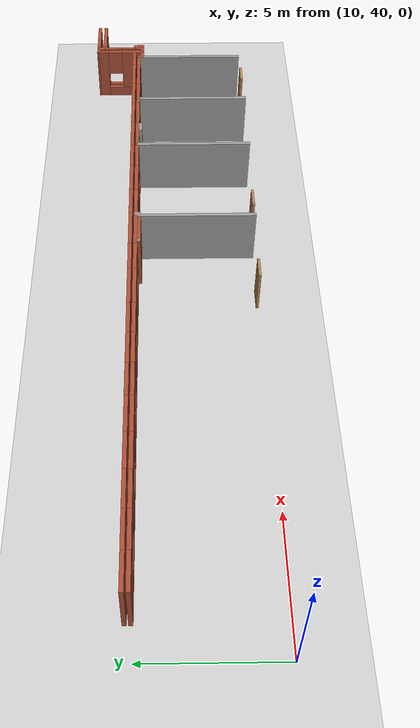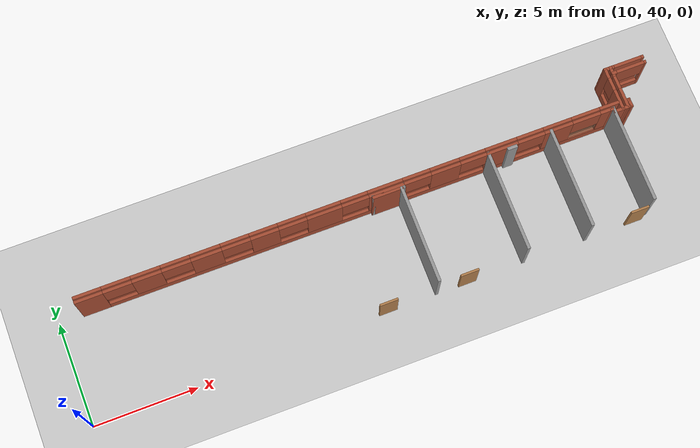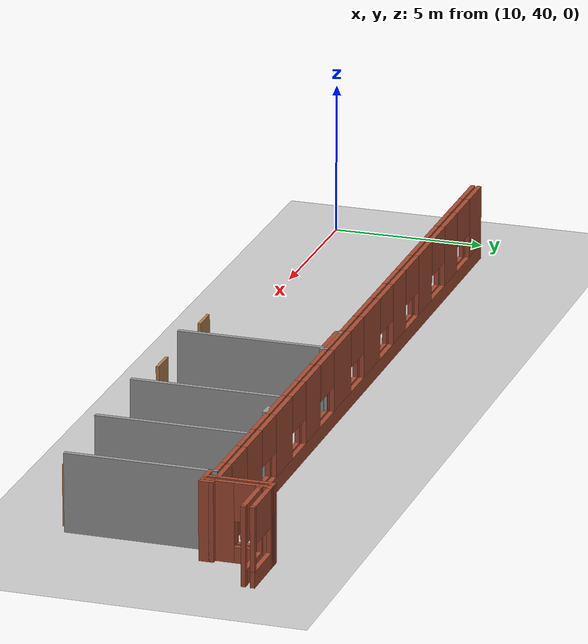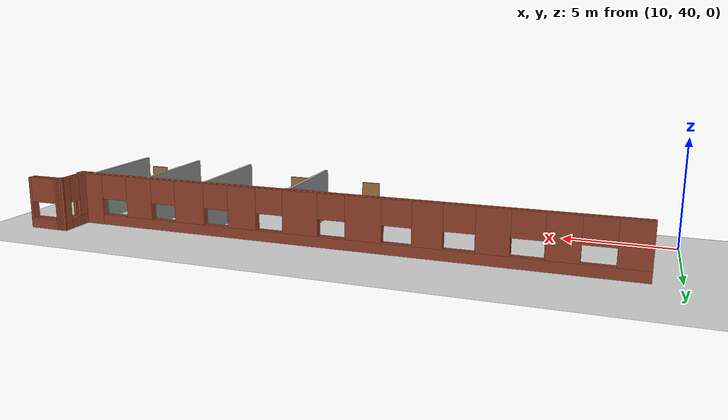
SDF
<sdf version="1.6">
 <world name="default">
  <model name="ground_plane">
   <static>1</static>
   <link name="link">
    <collision name="collision">
     <geometry><plane><normal>0 0 1</normal><size>100 100</size></plane></geometry>
     <surface><friction><ode><mu>100</mu><mu2>50</mu2></ode></friction></surface>
    </collision>
    <visual name="visual">
     <cast_shadows>0</cast_shadows>
     <geometry><plane><normal>0 0 1</normal><size>100 100</size></plane></geometry>
     <material>
      <script><uri>file://media/materials/scripts/gazebo.material</uri><name>Gazebo/Grey</name></script>
     </material>
    </visual>
   </link>
  </model>
  <model name="CVSSP">
   <pose>23.8714 24.094 0 0 -0 0</pose>
   <link name="Wall_286">
    <pose>14.7864 22.5502 0 0 0 -3.13685</pose>
    <visual name="Wall_286_Visual_0">
     <pose>-0.813568 0 1.25 0 -0 0</pose>
     <geometry><box><size>0.118345 0.15 2.5</size></box></geometry>
     <material>
      <script><uri>file://media/materials/scripts/gazebo.material</uri><name>Gazebo/Bricks</name></script>
      <ambient>1 1 1 1</ambient>
     </material>
    </visual>
    <collision name="Wall_286_Collision_0">
     <geometry><box><size>0.118345 0.15 2.5</size></box></geometry>
     <pose>-0.813568 0 1.25 0 -0 0</pose>
    </collision>
    <visual name="Wall_286_Visual_1">
     <pose>0.059173 0 0.25 0 -0 0</pose>
     <geometry><box><size>1.62714 0.15 0.5</size></box></geometry>
     <material>
      <script><uri>file://media/materials/scripts/gazebo.material</uri><name>Gazebo/Bricks</name></script>
      <ambient>1 1 1 1</ambient>
     </material>
    </visual>
    <collision name="Wall_286_Collision_1">
     <geometry><box><size>1.62714 0.15 0.5</size></box></geometry>
     <pose>0.059173 0 0.25 0 -0 0</pose>
    </collision>
    <visual name="Wall_286_Visual_2">
     <pose>0.74556 0 1.5 0 -0 0</pose>
     <geometry><box><size>0.254362 0.15 2</size></box></geometry>
     <material>
      <script><uri>file://media/materials/scripts/gazebo.material</uri><name>Gazebo/Bricks</name></script>
      <ambient>1 1 1 1</ambient>
     </material>
    </visual>
    <collision name="Wall_286_Collision_2">
     <geometry><box><size>0.254362 0.15 2</size></box></geometry>
     <pose>0.74556 0 1.5 0 -0 0</pose>
    </collision>
    <visual name="Wall_286_Visual_3">
     <pose>-0.068008 0 1.9 0 -0 0</pose>
     <geometry><box><size>1.37277 0.15 1.2</size></box></geometry>
     <material>
      <script><uri>file://media/materials/scripts/gazebo.material</uri><name>Gazebo/Bricks</name></script>
      <ambient>1 1 1 1</ambient>
     </material>
    </visual>
    <collision name="Wall_286_Collision_3">
     <geometry><box><size>1.37277 0.15 1.2</size></box></geometry>
     <pose>-0.068008 0 1.9 0 -0 0</pose>
    </collision>
   </link>
   <link name="Wall_287">
    <collision name="Wall_287_Collision">
     <geometry><box><size>0.437335 0.15 2.5</size></box></geometry>
     <pose>0 0 1.25 0 -0 0</pose>
    </collision>
    <visual name="Wall_287_Visual">
     <pose>0 0 1.25 0 -0 0</pose>
     <geometry><box><size>0.437335 0.15 2.5</size></box></geometry>
     <material>
      <script><uri>file://media/materials/scripts/gazebo.material</uri><name>Gazebo/Bricks</name></script>
      <ambient>1 1 1 1</ambient>
     </material>
    </visual>
    <pose>13.9886 22.6901 0 0 -0 1.5708</pose>
   </link>
   <link name="Wall_288">
    <pose>14.7864 22.8338 0 0 -0 0</pose>
    <visual name="Wall_288_Visual_0">
     <pose>-0.749362 0 1.25 0 -0 0</pose>
     <geometry><box><size>0.246758 0.15 2.5</size></box></geometry>
     <material>
      <script><uri>file://media/materials/scripts/gazebo.material</uri><name>Gazebo/Bricks</name></script>
      <ambient>1 1 1 1</ambient>
     </material>
    </visual>
    <collision name="Wall_288_Collision_0">
     <geometry><box><size>0.246758 0.15 2.5</size></box></geometry>
     <pose>-0.749362 0 1.25 0 -0 0</pose>
    </collision>
    <visual name="Wall_288_Visual_1">
     <pose>0.123379 0 0.25 0 -0 0</pose>
     <geometry><box><size>1.49872 0.15 0.5</size></box></geometry>
     <material>
      <script><uri>file://media/materials/scripts/gazebo.material</uri><name>Gazebo/Bricks</name></script>
      <ambient>1 1 1 1</ambient>
     </material>
    </visual>
    <collision name="Wall_288_Collision_1">
     <geometry><box><size>1.49872 0.15 0.5</size></box></geometry>
     <pose>0.123379 0 0.25 0 -0 0</pose>
    </collision>
    <visual name="Wall_288_Visual_2">
     <pose>0.806008 0 1.5 0 -0 0</pose>
     <geometry><box><size>0.133465 0.15 2</size></box></geometry>
     <material>
      <script><uri>file://media/materials/scripts/gazebo.material</uri><name>Gazebo/Bricks</name></script>
      <ambient>1 1 1 1</ambient>
     </material>
    </visual>
    <collision name="Wall_288_Collision_2">
     <geometry><box><size>0.133465 0.15 2</size></box></geometry>
     <pose>0.806008 0 1.5 0 -0 0</pose>
    </collision>
    <visual name="Wall_288_Visual_3">
     <pose>0.056646 0 1.9 0 -0 0</pose>
     <geometry><box><size>1.36526 0.15 1.2</size></box></geometry>
     <material>
      <script><uri>file://media/materials/scripts/gazebo.material</uri><name>Gazebo/Bricks</name></script>
      <ambient>1 1 1 1</ambient>
     </material>
    </visual>
    <collision name="Wall_288_Collision_3">
     <geometry><box><size>1.36526 0.15 1.2</size></box></geometry>
     <pose>0.056646 0 1.9 0 -0 0</pose>
    </collision>
   </link>
   <link name="Wall_291">
    <collision name="Wall_291_Collision">
     <geometry><box><size>0.414758 0.15 2.5</size></box></geometry>
     <pose>0 0 1.25 0 -0 0</pose>
    </collision>
    <visual name="Wall_291_Visual">
     <pose>0 0 1.25 0 -0 0</pose>
     <geometry><box><size>0.414758 0.15 2.5</size></box></geometry>
     <material>
      <script><uri>file://media/materials/scripts/gazebo.material</uri><name>Gazebo/Bricks</name></script>
      <ambient>1 1 1 1</ambient>
     </material>
    </visual>
    <pose>13.8563 22.83 0 0 0 -3.11303</pose>
   </link>
   <link name="Wall_292">
    <pose>13.7278 21.814 0 0 0 -1.56709</pose>
    <visual name="Wall_292_Visual_0">
     <pose>-0.83496 0 1.25 0 -0 0</pose>
     <geometry><box><size>0.519602 0.15 2.5</size></box></geometry>
     <material>
      <script><uri>file://media/materials/scripts/gazebo.material</uri><name>Gazebo/Bricks</name></script>
      <ambient>1 1 1 1</ambient>
     </material>
    </visual>
    <collision name="Wall_292_Collision_0">
     <geometry><box><size>0.519602 0.15 2.5</size></box></geometry>
     <pose>-0.83496 0 1.25 0 -0 0</pose>
    </collision>
    <visual name="Wall_292_Visual_1">
     <pose>0.259801 0 0.25 0 -0 0</pose>
     <geometry><box><size>1.66992 0.15 0.5</size></box></geometry>
     <material>
      <script><uri>file://media/materials/scripts/gazebo.material</uri><name>Gazebo/Bricks</name></script>
      <ambient>1 1 1 1</ambient>
     </material>
    </visual>
    <collision name="Wall_292_Collision_1">
     <geometry><box><size>1.66992 0.15 0.5</size></box></geometry>
     <pose>0.259801 0 0.25 0 -0 0</pose>
    </collision>
    <visual name="Wall_292_Visual_2">
     <pose>0.580428 0 1.5 0 -0 0</pose>
     <geometry><box><size>1.02867 0.15 2</size></box></geometry>
     <material>
      <script><uri>file://media/materials/scripts/gazebo.material</uri><name>Gazebo/Bricks</name></script>
      <ambient>1 1 1 1</ambient>
     </material>
    </visual>
    <collision name="Wall_292_Collision_2">
     <geometry><box><size>1.02867 0.15 2</size></box></geometry>
     <pose>0.580428 0 1.5 0 -0 0</pose>
    </collision>
    <visual name="Wall_292_Visual_3">
     <pose>-0.254532 0 1.9 0 -0 0</pose>
     <geometry><box><size>0.641254 0.15 1.2</size></box></geometry>
     <material>
      <script><uri>file://media/materials/scripts/gazebo.material</uri><name>Gazebo/Bricks</name></script>
      <ambient>1 1 1 1</ambient>
     </material>
    </visual>
    <collision name="Wall_292_Collision_3">
     <geometry><box><size>0.641254 0.15 1.2</size></box></geometry>
     <pose>-0.254532 0 1.9 0 -0 0</pose>
    </collision>
   </link>
   <link name="Wall_293">
    <collision name="Wall_293_Collision">
     <geometry><box><size>0.407097 0.15 2.5</size></box></geometry>
     <pose>0 0 1.25 0 -0 0</pose>
    </collision>
    <visual name="Wall_293_Visual">
     <pose>0 0 1.25 0 -0 0</pose>
     <geometry><box><size>0.407097 0.15 2.5</size></box></geometry>
     <material>
      <script><uri>file://media/materials/scripts/gazebo.material</uri><name>Gazebo/Bricks</name></script>
      <ambient>1 1 1 1</ambient>
     </material>
    </visual>
    <pose>13.8601 20.7857 0 0 0 -0.008088</pose>
   </link>
   <link name="Wall_294">
    <pose>13.9886 21.6277 0 0 -0 1.5708</pose>
    <visual name="Wall_294_Visual_0">
     <pose>-0.401803 0 1.25 0 -0 0</pose>
     <geometry><box><size>1.03275 0.15 2.5</size></box></geometry>
     <material>
      <script><uri>file://media/materials/scripts/gazebo.material</uri><name>Gazebo/Bricks</name></script>
      <ambient>1 1 1 1</ambient>
     </material>
    </visual>
    <collision name="Wall_294_Collision_0">
     <geometry><box><size>1.03275 0.15 2.5</size></box></geometry>
     <pose>-0.401803 0 1.25 0 -0 0</pose>
    </collision>
    <visual name="Wall_294_Visual_1">
     <pose>0.516374 0 0.25 0 -0 0</pose>
     <geometry><box><size>0.803605 0.15 0.5</size></box></geometry>
     <material>
      <script><uri>file://media/materials/scripts/gazebo.material</uri><name>Gazebo/Bricks</name></script>
      <ambient>1 1 1 1</ambient>
     </material>
    </visual>
    <collision name="Wall_294_Collision_1">
     <geometry><box><size>0.803605 0.15 0.5</size></box></geometry>
     <pose>0.516374 0 0.25 0 -0 0</pose>
    </collision>
    <visual name="Wall_294_Visual_2">
     <pose>0.834198 0 1.5 0 -0 0</pose>
     <geometry><box><size>0.167956 0.15 2</size></box></geometry>
     <material>
      <script><uri>file://media/materials/scripts/gazebo.material</uri><name>Gazebo/Bricks</name></script>
      <ambient>1 1 1 1</ambient>
     </material>
    </visual>
    <collision name="Wall_294_Collision_2">
     <geometry><box><size>0.167956 0.15 2</size></box></geometry>
     <pose>0.834198 0 1.5 0 -0 0</pose>
    </collision>
    <visual name="Wall_294_Visual_3">
     <pose>0.432396 0 1.9 0 -0 0</pose>
     <geometry><box><size>0.635649 0.15 1.2</size></box></geometry>
     <material>
      <script><uri>file://media/materials/scripts/gazebo.material</uri><name>Gazebo/Bricks</name></script>
      <ambient>1 1 1 1</ambient>
     </material>
    </visual>
    <collision name="Wall_294_Collision_3">
     <geometry><box><size>0.635649 0.15 1.2</size></box></geometry>
     <pose>0.432396 0 1.9 0 -0 0</pose>
    </collision>
   </link>
   <link name="Wall_296">
    <collision name="Wall_296_Collision">
     <geometry><box><size>0.30879 0.15 2.5</size></box></geometry>
     <pose>0 0 1.25 0 -0 0</pose>
    </collision>
    <visual name="Wall_296_Visual">
     <pose>0 0 1.25 0 -0 0</pose>
     <geometry><box><size>0.30879 0.15 2.5</size></box></geometry>
     <material>
      <script><uri>file://media/materials/scripts/gazebo.material</uri><name>Gazebo/Bricks</name></script>
      <ambient>1 1 1 1</ambient>
     </material>
    </visual>
    <pose>14.068 20.7846 0 0 -0 0</pose>
   </link>
   <link name="Wall_297">
    <collision name="Wall_297_Collision">
     <geometry><box><size>0.460019 0.15 2.5</size></box></geometry>
     <pose>0 0 1.25 0 -0 0</pose>
    </collision>
    <visual name="Wall_297_Visual">
     <pose>0 0 1.25 0 -0 0</pose>
     <geometry><box><size>0.460019 0.15 2.5</size></box></geometry>
     <material>
      <script><uri>file://media/materials/scripts/gazebo.material</uri><name>Gazebo/Bricks</name></script>
      <ambient>1 1 1 1</ambient>
     </material>
    </visual>
    <pose>14.1474 20.9396 0 0 -0 1.5708</pose>
   </link>
   <link name="Wall_299">
    <collision name="Wall_299_Collision">
     <geometry><box><size>0.25 0.15 2.5</size></box></geometry>
     <pose>0 0 1.25 0 -0 0</pose>
    </collision>
    <visual name="Wall_299_Visual">
     <pose>0 0 1.25 0 -0 0</pose>
     <geometry><box><size>0.25 0.15 2.5</size></box></geometry>
     <material>
      <script><uri>file://media/materials/scripts/gazebo.material</uri><name>Gazebo/Bricks</name></script>
      <ambient>1 1 1 1</ambient>
     </material>
    </visual>
    <pose>14.0974 21.0946 0 0 -0 3.14159</pose>
   </link>
   <link name="Wall_301">
    <pose>0.541411 21.1476 0 0 -0 3.14159</pose>
    <visual name="Wall_301_Visual_0">
     <pose>-12.7063 0 1.25 0 -0 0</pose>
     <geometry><box><size>1.08735 0.15 2.5</size></box></geometry>
     <material>
      <script><uri>file://media/materials/scripts/gazebo.material</uri><name>Gazebo/Bricks</name></script>
      <ambient>1 1 1 1</ambient>
     </material>
    </visual>
    <collision name="Wall_301_Collision_0">
     <geometry><box><size>1.08735 0.15 2.5</size></box></geometry>
     <pose>-12.7063 0 1.25 0 -0 0</pose>
    </collision>
    <visual name="Wall_301_Visual_1">
     <pose>0.543674 0 0.25 0 -0 0</pose>
     <geometry><box><size>25.4127 0.15 0.5</size></box></geometry>
     <material>
      <script><uri>file://media/materials/scripts/gazebo.material</uri><name>Gazebo/Bricks</name></script>
      <ambient>1 1 1 1</ambient>
     </material>
    </visual>
    <collision name="Wall_301_Collision_1">
     <geometry><box><size>25.4127 0.15 0.5</size></box></geometry>
     <pose>0.543674 0 0.25 0 -0 0</pose>
    </collision>
    <visual name="Wall_301_Visual_2">
     <pose>-10.054 0 1.5 0 -0 0</pose>
     <geometry><box><size>1.40457 0.15 2</size></box></geometry>
     <material>
      <script><uri>file://media/materials/scripts/gazebo.material</uri><name>Gazebo/Bricks</name></script>
      <ambient>1 1 1 1</ambient>
     </material>
    </visual>
    <collision name="Wall_301_Collision_2">
     <geometry><box><size>1.40457 0.15 2</size></box></geometry>
     <pose>-10.054 0 1.5 0 -0 0</pose>
    </collision>
    <visual name="Wall_301_Visual_3">
     <pose>-7.26 0 1.5 0 -0 0</pose>
     <geometry><box><size>1.56325 0.15 2</size></box></geometry>
     <material>
      <script><uri>file://media/materials/scripts/gazebo.material</uri><name>Gazebo/Bricks</name></script>
      <ambient>1 1 1 1</ambient>
     </material>
    </visual>
    <collision name="Wall_301_Collision_3">
     <geometry><box><size>1.56325 0.15 2</size></box></geometry>
     <pose>-7.26 0 1.5 0 -0 0</pose>
    </collision>
    <visual name="Wall_301_Visual_4">
     <pose>-4.48871 0 1.5 0 -0 0</pose>
     <geometry><box><size>1.43857 0.15 2</size></box></geometry>
     <material>
      <script><uri>file://media/materials/scripts/gazebo.material</uri><name>Gazebo/Bricks</name></script>
      <ambient>1 1 1 1</ambient>
     </material>
    </visual>
    <collision name="Wall_301_Collision_4">
     <geometry><box><size>1.43857 0.15 2</size></box></geometry>
     <pose>-4.48871 0 1.5 0 -0 0</pose>
    </collision>
    <visual name="Wall_301_Visual_5">
     <pose>-1.57856 0 1.5 0 -0 0</pose>
     <geometry><box><size>1.70493 0.15 2</size></box></geometry>
     <material>
      <script><uri>file://media/materials/scripts/gazebo.material</uri><name>Gazebo/Bricks</name></script>
      <ambient>1 1 1 1</ambient>
     </material>
    </visual>
    <collision name="Wall_301_Collision_5">
     <geometry><box><size>1.70493 0.15 2</size></box></geometry>
     <pose>-1.57856 0 1.5 0 -0 0</pose>
    </collision>
    <visual name="Wall_301_Visual_6">
     <pose>1.41376 0 1.5 0 -0 0</pose>
     <geometry><box><size>1.68226 0.15 2</size></box></geometry>
     <material>
      <script><uri>file://media/materials/scripts/gazebo.material</uri><name>Gazebo/Bricks</name></script>
      <ambient>1 1 1 1</ambient>
     </material>
    </visual>
    <collision name="Wall_301_Collision_6">
     <geometry><box><size>1.68226 0.15 2</size></box></geometry>
     <pose>1.41376 0 1.5 0 -0 0</pose>
    </collision>
    <visual name="Wall_301_Visual_7">
     <pose>4.28139 0 1.5 0 -0 0</pose>
     <geometry><box><size>1.35356 0.15 2</size></box></geometry>
     <material>
      <script><uri>file://media/materials/scripts/gazebo.material</uri><name>Gazebo/Bricks</name></script>
      <ambient>1 1 1 1</ambient>
     </material>
    </visual>
    <collision name="Wall_301_Collision_7">
     <geometry><box><size>1.35356 0.15 2</size></box></geometry>
     <pose>4.28139 0 1.5 0 -0 0</pose>
    </collision>
    <visual name="Wall_301_Visual_8">
     <pose>7.04557 0 1.5 0 -0 0</pose>
     <geometry><box><size>1.44133 0.15 2</size></box></geometry>
     <material>
      <script><uri>file://media/materials/scripts/gazebo.material</uri><name>Gazebo/Bricks</name></script>
      <ambient>1 1 1 1</ambient>
     </material>
    </visual>
    <collision name="Wall_301_Collision_8">
     <geometry><box><size>1.44133 0.15 2</size></box></geometry>
     <pose>7.04557 0 1.5 0 -0 0</pose>
    </collision>
    <visual name="Wall_301_Visual_9">
     <pose>9.84934 0 1.5 0 -0 0</pose>
     <geometry><box><size>1.39875 0.15 2</size></box></geometry>
     <material>
      <script><uri>file://media/materials/scripts/gazebo.material</uri><name>Gazebo/Bricks</name></script>
      <ambient>1 1 1 1</ambient>
     </material>
    </visual>
    <collision name="Wall_301_Collision_9">
     <geometry><box><size>1.39875 0.15 2</size></box></geometry>
     <pose>9.84934 0 1.5 0 -0 0</pose>
    </collision>
    <visual name="Wall_301_Visual_10">
     <pose>12.5827 0 1.5 0 -0 0</pose>
     <geometry><box><size>1.33456 0.15 2</size></box></geometry>
     <material>
      <script><uri>file://media/materials/scripts/gazebo.material</uri><name>Gazebo/Bricks</name></script>
      <ambient>1 1 1 1</ambient>
     </material>
    </visual>
    <collision name="Wall_301_Collision_10">
     <geometry><box><size>1.33456 0.15 2</size></box></geometry>
     <pose>12.5827 0 1.5 0 -0 0</pose>
    </collision>
    <visual name="Wall_301_Visual_11">
     <pose>-11.4595 0 1.9 0 -0 0</pose>
     <geometry><box><size>1.4064 0.15 1.2</size></box></geometry>
     <material>
      <script><uri>file://media/materials/scripts/gazebo.material</uri><name>Gazebo/Bricks</name></script>
      <ambient>1 1 1 1</ambient>
     </material>
    </visual>
    <collision name="Wall_301_Collision_11">
     <geometry><box><size>1.4064 0.15 1.2</size></box></geometry>
     <pose>-11.4595 0 1.9 0 -0 0</pose>
    </collision>
    <visual name="Wall_301_Visual_12">
     <pose>-8.69666 0 1.9 0 -0 0</pose>
     <geometry><box><size>1.31005 0.15 1.2</size></box></geometry>
     <material>
      <script><uri>file://media/materials/scripts/gazebo.material</uri><name>Gazebo/Bricks</name></script>
      <ambient>1 1 1 1</ambient>
     </material>
    </visual>
    <collision name="Wall_301_Collision_12">
     <geometry><box><size>1.31005 0.15 1.2</size></box></geometry>
     <pose>-8.69666 0 1.9 0 -0 0</pose>
    </collision>
    <visual name="Wall_301_Visual_13">
     <pose>-5.84319 0 1.9 0 -0 0</pose>
     <geometry><box><size>1.27038 0.15 1.2</size></box></geometry>
     <material>
      <script><uri>file://media/materials/scripts/gazebo.material</uri><name>Gazebo/Bricks</name></script>
      <ambient>1 1 1 1</ambient>
     </material>
    </visual>
    <collision name="Wall_301_Collision_13">
     <geometry><box><size>1.27038 0.15 1.2</size></box></geometry>
     <pose>-5.84319 0 1.9 0 -0 0</pose>
    </collision>
    <visual name="Wall_301_Visual_14">
     <pose>-3.10023 0 1.9 0 -0 0</pose>
     <geometry><box><size>1.33839 0.15 1.2</size></box></geometry>
     <material>
      <script><uri>file://media/materials/scripts/gazebo.material</uri><name>Gazebo/Bricks</name></script>
      <ambient>1 1 1 1</ambient>
     </material>
    </visual>
    <collision name="Wall_301_Collision_14">
     <geometry><box><size>1.33839 0.15 1.2</size></box></geometry>
     <pose>-3.10023 0 1.9 0 -0 0</pose>
    </collision>
    <visual name="Wall_301_Visual_15">
     <pose>-0.076737 0 1.9 0 -0 0</pose>
     <geometry><box><size>1.29872 0.15 1.2</size></box></geometry>
     <material>
      <script><uri>file://media/materials/scripts/gazebo.material</uri><name>Gazebo/Bricks</name></script>
      <ambient>1 1 1 1</ambient>
     </material>
    </visual>
    <collision name="Wall_301_Collision_15">
     <geometry><box><size>1.29872 0.15 1.2</size></box></geometry>
     <pose>-0.076737 0 1.9 0 -0 0</pose>
    </collision>
    <visual name="Wall_301_Visual_16">
     <pose>2.92975 0 1.9 0 -0 0</pose>
     <geometry><box><size>1.34973 0.15 1.2</size></box></geometry>
     <material>
      <script><uri>file://media/materials/scripts/gazebo.material</uri><name>Gazebo/Bricks</name></script>
      <ambient>1 1 1 1</ambient>
     </material>
    </visual>
    <collision name="Wall_301_Collision_16">
     <geometry><box><size>1.34973 0.15 1.2</size></box></geometry>
     <pose>2.92975 0 1.9 0 -0 0</pose>
    </collision>
    <visual name="Wall_301_Visual_17">
     <pose>5.64154 0 1.9 0 -0 0</pose>
     <geometry><box><size>1.36673 0.15 1.2</size></box></geometry>
     <material>
      <script><uri>file://media/materials/scripts/gazebo.material</uri><name>Gazebo/Bricks</name></script>
      <ambient>1 1 1 1</ambient>
     </material>
    </visual>
    <collision name="Wall_301_Collision_17">
     <geometry><box><size>1.36673 0.15 1.2</size></box></geometry>
     <pose>5.64154 0 1.9 0 -0 0</pose>
    </collision>
    <visual name="Wall_301_Visual_18">
     <pose>8.4581 0 1.9 0 -0 0</pose>
     <geometry><box><size>1.38373 0.15 1.2</size></box></geometry>
     <material>
      <script><uri>file://media/materials/scripts/gazebo.material</uri><name>Gazebo/Bricks</name></script>
      <ambient>1 1 1 1</ambient>
     </material>
    </visual>
    <collision name="Wall_301_Collision_18">
     <geometry><box><size>1.38373 0.15 1.2</size></box></geometry>
     <pose>8.4581 0 1.9 0 -0 0</pose>
    </collision>
    <visual name="Wall_301_Visual_19">
     <pose>11.2321 0 1.9 0 -0 0</pose>
     <geometry><box><size>1.36673 0.15 1.2</size></box></geometry>
     <material>
      <script><uri>file://media/materials/scripts/gazebo.material</uri><name>Gazebo/Bricks</name></script>
      <ambient>1 1 1 1</ambient>
     </material>
    </visual>
    <collision name="Wall_301_Collision_19">
     <geometry><box><size>1.36673 0.15 1.2</size></box></geometry>
     <pose>11.2321 0 1.9 0 -0 0</pose>
    </collision>
   </link>
   <link name="Wall_303">
    <pose>0.29478 20.9408 0 0 -0 0</pose>
    <visual name="Wall_303_Visual_0">
     <pose>-12.3344 0 1.25 0 -0 0</pose>
     <geometry><box><size>1.33119 0.15 2.5</size></box></geometry>
     <material>
      <script><uri>file://media/materials/scripts/gazebo.material</uri><name>Gazebo/Bricks</name></script>
      <ambient>1 1 1 1</ambient>
     </material>
    </visual>
    <collision name="Wall_303_Collision_0">
     <geometry><box><size>1.33119 0.15 2.5</size></box></geometry>
     <pose>-12.3344 0 1.25 0 -0 0</pose>
    </collision>
    <visual name="Wall_303_Visual_1">
     <pose>0.665598 0 0.25 0 -0 0</pose>
     <geometry><box><size>24.6688 0.15 0.5</size></box></geometry>
     <material>
      <script><uri>file://media/materials/scripts/gazebo.material</uri><name>Gazebo/Bricks</name></script>
      <ambient>1 1 1 1</ambient>
     </material>
    </visual>
    <collision name="Wall_303_Collision_1">
     <geometry><box><size>24.6688 0.15 0.5</size></box></geometry>
     <pose>0.665598 0 0.25 0 -0 0</pose>
    </collision>
    <visual name="Wall_303_Visual_2">
     <pose>-9.60766 0 1.5 0 -0 0</pose>
     <geometry><box><size>1.38884 0.15 2</size></box></geometry>
     <material>
      <script><uri>file://media/materials/scripts/gazebo.material</uri><name>Gazebo/Bricks</name></script>
      <ambient>1 1 1 1</ambient>
     </material>
    </visual>
    <collision name="Wall_303_Collision_2">
     <geometry><box><size>1.38884 0.15 2</size></box></geometry>
     <pose>-9.60766 0 1.5 0 -0 0</pose>
    </collision>
    <visual name="Wall_303_Visual_3">
     <pose>-6.80389 0 1.5 0 -0 0</pose>
     <geometry><box><size>1.45124 0.15 2</size></box></geometry>
     <material>
      <script><uri>file://media/materials/scripts/gazebo.material</uri><name>Gazebo/Bricks</name></script>
      <ambient>1 1 1 1</ambient>
     </material>
    </visual>
    <collision name="Wall_303_Collision_3">
     <geometry><box><size>1.45124 0.15 2</size></box></geometry>
     <pose>-6.80389 0 1.5 0 -0 0</pose>
    </collision>
    <visual name="Wall_303_Visual_4">
     <pose>-4.03476 0 1.5 0 -0 0</pose>
     <geometry><box><size>1.34223 0.15 2</size></box></geometry>
     <material>
      <script><uri>file://media/materials/scripts/gazebo.material</uri><name>Gazebo/Bricks</name></script>
      <ambient>1 1 1 1</ambient>
     </material>
    </visual>
    <collision name="Wall_303_Collision_4">
     <geometry><box><size>1.34223 0.15 2</size></box></geometry>
     <pose>-4.03476 0 1.5 0 -0 0</pose>
    </collision>
    <visual name="Wall_303_Visual_5">
     <pose>-1.16996 0 1.5 0 -0 0</pose>
     <geometry><box><size>1.6766 0.15 2</size></box></geometry>
     <material>
      <script><uri>file://media/materials/scripts/gazebo.material</uri><name>Gazebo/Bricks</name></script>
      <ambient>1 1 1 1</ambient>
     </material>
    </visual>
    <collision name="Wall_303_Collision_5">
     <geometry><box><size>1.6766 0.15 2</size></box></geometry>
     <pose>-1.16996 0 1.5 0 -0 0</pose>
    </collision>
    <visual name="Wall_303_Visual_6">
     <pose>1.82803 0 1.5 0 -0 0</pose>
     <geometry><box><size>1.7106 0.15 2</size></box></geometry>
     <material>
      <script><uri>file://media/materials/scripts/gazebo.material</uri><name>Gazebo/Bricks</name></script>
      <ambient>1 1 1 1</ambient>
     </material>
    </visual>
    <collision name="Wall_303_Collision_6">
     <geometry><box><size>1.7106 0.15 2</size></box></geometry>
     <pose>1.82803 0 1.5 0 -0 0</pose>
    </collision>
    <visual name="Wall_303_Visual_7">
     <pose>4.72401 0 1.5 0 -0 0</pose>
     <geometry><box><size>1.43857 0.15 2</size></box></geometry>
     <material>
      <script><uri>file://media/materials/scripts/gazebo.material</uri><name>Gazebo/Bricks</name></script>
      <ambient>1 1 1 1</ambient>
     </material>
    </visual>
    <collision name="Wall_303_Collision_7">
     <geometry><box><size>1.43857 0.15 2</size></box></geometry>
     <pose>4.72401 0 1.5 0 -0 0</pose>
    </collision>
    <visual name="Wall_303_Visual_8">
     <pose>7.50097 0 1.5 0 -0 0</pose>
     <geometry><box><size>1.55192 0.15 2</size></box></geometry>
     <material>
      <script><uri>file://media/materials/scripts/gazebo.material</uri><name>Gazebo/Bricks</name></script>
      <ambient>1 1 1 1</ambient>
     </material>
    </visual>
    <collision name="Wall_303_Collision_8">
     <geometry><box><size>1.55192 0.15 2</size></box></geometry>
     <pose>7.50097 0 1.5 0 -0 0</pose>
    </collision>
    <visual name="Wall_303_Visual_9">
     <pose>10.2921 0 1.5 0 -0 0</pose>
     <geometry><box><size>1.3989 0.15 2</size></box></geometry>
     <material>
      <script><uri>file://media/materials/scripts/gazebo.material</uri><name>Gazebo/Bricks</name></script>
      <ambient>1 1 1 1</ambient>
     </material>
    </visual>
    <collision name="Wall_303_Collision_9">
     <geometry><box><size>1.3989 0.15 2</size></box></geometry>
     <pose>10.2921 0 1.5 0 -0 0</pose>
    </collision>
    <visual name="Wall_303_Visual_10">
     <pose>12.682 0 1.5 0 -0 0</pose>
     <geometry><box><size>0.636054 0.15 2</size></box></geometry>
     <material>
      <script><uri>file://media/materials/scripts/gazebo.material</uri><name>Gazebo/Bricks</name></script>
      <ambient>1 1 1 1</ambient>
     </material>
    </visual>
    <collision name="Wall_303_Collision_10">
     <geometry><box><size>0.636054 0.15 2</size></box></geometry>
     <pose>12.682 0 1.5 0 -0 0</pose>
    </collision>
    <visual name="Wall_303_Visual_11">
     <pose>-10.9854 0 1.9 0 -0 0</pose>
     <geometry><box><size>1.36673 0.15 1.2</size></box></geometry>
     <material>
      <script><uri>file://media/materials/scripts/gazebo.material</uri><name>Gazebo/Bricks</name></script>
      <ambient>1 1 1 1</ambient>
     </material>
    </visual>
    <collision name="Wall_303_Collision_11">
     <geometry><box><size>1.36673 0.15 1.2</size></box></geometry>
     <pose>-10.9854 0 1.9 0 -0 0</pose>
    </collision>
    <visual name="Wall_303_Visual_12">
     <pose>-8.22138 0 1.9 0 -0 0</pose>
     <geometry><box><size>1.38373 0.15 1.2</size></box></geometry>
     <material>
      <script><uri>file://media/materials/scripts/gazebo.material</uri><name>Gazebo/Bricks</name></script>
      <ambient>1 1 1 1</ambient>
     </material>
    </visual>
    <collision name="Wall_303_Collision_12">
     <geometry><box><size>1.38373 0.15 1.2</size></box></geometry>
     <pose>-8.22138 0 1.9 0 -0 0</pose>
    </collision>
    <visual name="Wall_303_Visual_13">
     <pose>-5.39208 0 1.9 0 -0 0</pose>
     <geometry><box><size>1.37239 0.15 1.2</size></box></geometry>
     <material>
      <script><uri>file://media/materials/scripts/gazebo.material</uri><name>Gazebo/Bricks</name></script>
      <ambient>1 1 1 1</ambient>
     </material>
    </visual>
    <collision name="Wall_303_Collision_13">
     <geometry><box><size>1.37239 0.15 1.2</size></box></geometry>
     <pose>-5.39208 0 1.9 0 -0 0</pose>
    </collision>
    <visual name="Wall_303_Visual_14">
     <pose>-2.68595 0 1.9 0 -0 0</pose>
     <geometry><box><size>1.35539 0.15 1.2</size></box></geometry>
     <material>
      <script><uri>file://media/materials/scripts/gazebo.material</uri><name>Gazebo/Bricks</name></script>
      <ambient>1 1 1 1</ambient>
     </material>
    </visual>
    <collision name="Wall_303_Collision_14">
     <geometry><box><size>1.35539 0.15 1.2</size></box></geometry>
     <pose>-2.68595 0 1.9 0 -0 0</pose>
    </collision>
    <visual name="Wall_303_Visual_15">
     <pose>0.320535 0 1.9 0 -0 0</pose>
     <geometry><box><size>1.30439 0.15 1.2</size></box></geometry>
     <material>
      <script><uri>file://media/materials/scripts/gazebo.material</uri><name>Gazebo/Bricks</name></script>
      <ambient>1 1 1 1</ambient>
     </material>
    </visual>
    <collision name="Wall_303_Collision_15">
     <geometry><box><size>1.30439 0.15 1.2</size></box></geometry>
     <pose>0.320535 0 1.9 0 -0 0</pose>
    </collision>
    <visual name="Wall_303_Visual_16">
     <pose>3.34402 0 1.9 0 -0 0</pose>
     <geometry><box><size>1.32139 0.15 1.2</size></box></geometry>
     <material>
      <script><uri>file://media/materials/scripts/gazebo.material</uri><name>Gazebo/Bricks</name></script>
      <ambient>1 1 1 1</ambient>
     </material>
    </visual>
    <collision name="Wall_303_Collision_16">
     <geometry><box><size>1.32139 0.15 1.2</size></box></geometry>
     <pose>3.34402 0 1.9 0 -0 0</pose>
    </collision>
    <visual name="Wall_303_Visual_17">
     <pose>6.08415 0 1.9 0 -0 0</pose>
     <geometry><box><size>1.28172 0.15 1.2</size></box></geometry>
     <material>
      <script><uri>file://media/materials/scripts/gazebo.material</uri><name>Gazebo/Bricks</name></script>
      <ambient>1 1 1 1</ambient>
     </material>
    </visual>
    <collision name="Wall_303_Collision_17">
     <geometry><box><size>1.28172 0.15 1.2</size></box></geometry>
     <pose>6.08415 0 1.9 0 -0 0</pose>
    </collision>
    <visual name="Wall_303_Visual_18">
     <pose>8.93479 0 1.9 0 -0 0</pose>
     <geometry><box><size>1.31572 0.15 1.2</size></box></geometry>
     <material>
      <script><uri>file://media/materials/scripts/gazebo.material</uri><name>Gazebo/Bricks</name></script>
      <ambient>1 1 1 1</ambient>
     </material>
    </visual>
    <collision name="Wall_303_Collision_18">
     <geometry><box><size>1.31572 0.15 1.2</size></box></geometry>
     <pose>8.93479 0 1.9 0 -0 0</pose>
    </collision>
    <visual name="Wall_303_Visual_19">
     <pose>11.6777 0 1.9 0 -0 0</pose>
     <geometry><box><size>1.37239 0.15 1.2</size></box></geometry>
     <material>
      <script><uri>file://media/materials/scripts/gazebo.material</uri><name>Gazebo/Bricks</name></script>
      <ambient>1 1 1 1</ambient>
     </material>
    </visual>
    <collision name="Wall_303_Collision_19">
     <geometry><box><size>1.37239 0.15 1.2</size></box></geometry>
     <pose>11.6777 0 1.9 0 -0 0</pose>
    </collision>
   </link>
   <link name="Wall_304">
    <collision name="Wall_304_Collision">
     <geometry><box><size>0.25 0.15 2.5</size></box></geometry>
     <pose>0 0 1.25 0 -0 0</pose>
    </collision>
    <visual name="Wall_304_Visual">
     <pose>0 0 1.25 0 -0 0</pose>
     <geometry><box><size>0.25 0.15 2.5</size></box></geometry>
     <material>
      <script><uri>file://media/materials/scripts/gazebo.material</uri><name>Gazebo/Bricks</name></script>
      <ambient>1 1 1 1</ambient>
     </material>
    </visual>
    <pose>13.2698 20.9408 0 0 -0 0</pose>
   </link>
   <link name="Wall_305">
    <collision name="Wall_305_Collision">
     <geometry><box><size>4.75 0.15 2.5</size></box></geometry>
     <pose>0 0 1.25 0 -0 0</pose>
    </collision>
    <visual name="Wall_305_Visual">
     <pose>0 0 1.25 0 -0 0</pose>
     <geometry><box><size>4.75 0.15 2.5</size></box></geometry>
     <material>
      <script><uri>file://media/materials/scripts/gazebo.material</uri><name>Gazebo/Grey</name></script>
      <ambient>1 1 1 1</ambient>
     </material>
    </visual>
    <pose>13.3198 18.6408 0 0 0 -1.5708</pose>
   </link>
   <link name="Wall_307">
    <collision name="Wall_307_Collision">
     <geometry><box><size>0.533753 0.15 2.5</size></box></geometry>
     <pose>0 0 1.25 0 -0 0</pose>
    </collision>
    <visual name="Wall_307_Visual">
     <pose>0 0 1.25 0 -0 0</pose>
     <geometry><box><size>0.533753 0.15 2.5</size></box></geometry>
     <material>
      <script><uri>file://media/materials/scripts/gazebo.material</uri><name>Gazebo/Bricks</name></script>
      <ambient>1 1 1 1</ambient>
     </material>
    </visual>
    <pose>13.5323 20.7794 0 0 -0 0</pose>
   </link>
   <link name="Wall_322">
    <collision name="Wall_322_Collision">
     <geometry><box><size>4.75 0.15 2.5</size></box></geometry>
     <pose>0 0 1.25 0 -0 0</pose>
    </collision>
    <visual name="Wall_322_Visual">
     <pose>0 0 1.25 0 -0 0</pose>
     <geometry><box><size>4.75 0.15 2.5</size></box></geometry>
     <material>
      <script><uri>file://media/materials/scripts/gazebo.material</uri><name>Gazebo/Grey</name></script>
      <ambient>0.588235 0.588235 0.588235 1</ambient>
     </material>
    </visual>
    <pose>2.8067 18.5154 0 0 -0 1.5708</pose>
   </link>
   <link name="Wall_323">
    <collision name="Wall_323_Collision">
     <geometry><box><size>1.5 0.15 2.5</size></box></geometry>
     <pose>0 0 1.25 0 -0 0</pose>
    </collision>
    <visual name="Wall_323_Visual">
     <pose>0 0 1.25 0 -0 0</pose>
     <geometry><box><size>1.5 0.15 2.5</size></box></geometry>
     <material>
      <script><uri>file://media/materials/scripts/gazebo.material</uri><name>Gazebo/Bricks</name></script>
      <ambient>1 1 1 1</ambient>
     </material>
    </visual>
    <pose>2.1317 20.8154 0 0 -0 3.14159</pose>
   </link>
   <link name="Wall_324">
    <collision name="Wall_324_Collision">
     <geometry><box><size>0.25 0.15 2.5</size></box></geometry>
     <pose>0 0 1.25 0 -0 0</pose>
    </collision>
    <visual name="Wall_324_Visual">
     <pose>0 0 1.25 0 -0 0</pose>
     <geometry><box><size>0.25 0.15 2.5</size></box></geometry>
     <material>
      <script><uri>file://media/materials/scripts/gazebo.material</uri><name>Gazebo/Grey</name></script>
      <ambient>1 1 1 1</ambient>
     </material>
    </visual>
    <pose>1.4567 20.8654 0 0 -0 1.5708</pose>
   </link>
   <link name="Wall_332">
    <collision name="Wall_332_Collision">
     <geometry><box><size>0.280384 0.15 2.5</size></box></geometry>
     <pose>0 0 1.25 0 -0 0</pose>
    </collision>
    <visual name="Wall_332_Visual">
     <pose>0 0 1.25 0 -0 0</pose>
     <geometry><box><size>0.280384 0.15 2.5</size></box></geometry>
     <material>
      <script><uri>file://media/materials/scripts/gazebo.material</uri><name>Gazebo/Grey</name></script>
      <ambient>1 1 1 1</ambient>
     </material>
    </visual>
    <pose>2.8517 20.8304 0 0 0 -0.076772</pose>
   </link>
   <link name="Wall_333">
    <collision name="Wall_333_Collision">
     <geometry><box><size>0.25 0.15 2.5</size></box></geometry>
     <pose>0 0 1.25 0 -0 0</pose>
    </collision>
    <visual name="Wall_333_Visual">
     <pose>0 0 1.25 0 -0 0</pose>
     <geometry><box><size>0.25 0.15 2.5</size></box></geometry>
     <material>
      <script><uri>file://media/materials/scripts/gazebo.material</uri><name>Gazebo/Grey</name></script>
      <ambient>1 1 1 1</ambient>
     </material>
    </visual>
    <pose>2.9067 20.8754 0 0 -0 1.5708</pose>
   </link>
   <link name="Wall_335">
    <collision name="Wall_335_Collision">
     <geometry><box><size>4.88455 0.15 2.5</size></box></geometry>
     <pose>0 0 1.25 0 -0 0</pose>
    </collision>
    <visual name="Wall_335_Visual">
     <pose>0 0 1.25 0 -0 0</pose>
     <geometry><box><size>4.88455 0.15 2.5</size></box></geometry>
     <material>
      <script><uri>file://media/materials/scripts/gazebo.material</uri><name>Gazebo/Grey</name></script>
      <ambient>0.588235 0.588235 0.588235 1</ambient>
     </material>
    </visual>
    <pose>7.10695 18.568 0 0 -0 1.5708</pose>
   </link>
   <link name="Wall_337">
    <collision name="Wall_337_Collision">
     <geometry><box><size>4.89779 0.15 2.5</size></box></geometry>
     <pose>0 0 1.25 0 -0 0</pose>
    </collision>
    <visual name="Wall_337_Visual">
     <pose>0 0 1.25 0 -0 0</pose>
     <geometry><box><size>4.89779 0.15 2.5</size></box></geometry>
     <material>
      <script><uri>file://media/materials/scripts/gazebo.material</uri><name>Gazebo/Grey</name></script>
      <ambient>0.588235 0.588235 0.588235 1</ambient>
     </material>
    </visual>
    <pose>10.2148 18.5614 0 0 -0 1.5708</pose>
   </link>
   <link name="Wall_671">
    <collision name="Wall_671_Collision">
     <geometry><box><size>0.491931 0.15 2.5</size></box></geometry>
     <pose>0 0 1.25 0 -0 0</pose>
    </collision>
    <visual name="Wall_671_Visual">
     <pose>0 0 1.25 0 -0 0</pose>
     <geometry><box><size>0.491931 0.15 2.5</size></box></geometry>
     <material>
      <script><uri>file://media/materials/scripts/gazebo.material</uri><name>Gazebo/Grey</name></script>
      <ambient>1 1 1 1</ambient>
     </material>
    </visual>
    <pose>8.2379 20.825 0 0 -0 0</pose>
   </link>
   <static>1</static>
  </model>
  <model name="window_0_clone">
   <link name="link">
    <inertial>
     <mass>0.185318</mass>
     <inertia>
      <ixx>0.0157792</ixx>
      <ixy>0</ixy>
      <ixz>0</ixz>
      <iyy>0.0398142</iyy>
      <iyz>0</iyz>
      <izz>0.0247071</izz>
     </inertia>
    </inertial>
    <visual name="visual">
     <geometry><box><size>1.44901 0.147514 0.798588</size></box></geometry>
     <material>
      <script><name>Gazebo/Grey</name><uri>file://media/materials/scripts/gazebo.material</uri></script>
      <shader type="pixel"><normal_map>__default__</normal_map></shader>
      <ambient>0.435 0.796 0.675 1</ambient>
      <diffuse>0.7 0.7 0.7 1</diffuse>
      <specular>0.01 0.01 0.01 1</specular>
      <emissive>0 0 0 1</emissive>
     </material>
     <transparency>0.8</transparency>
    </visual>
    <collision name="collision">
     <geometry><box><size>1.44901 0.147514 0.798588</size></box></geometry>
     <surface>
      <friction>
       <ode><mu>1</mu><mu2>1</mu2><fdir1>0 0 0</fdir1><slip1>0</slip1><slip2>0</slip2></ode>
       <torsional>
        <coefficient>1</coefficient>
        <patch_radius>0</patch_radius>
        <surface_radius>0</surface_radius>
        <use_patch_radius>1</use_patch_radius>
        <ode><slip>0</slip></ode>
       </torsional>
      </friction>
      <bounce><restitution_coefficient>0</restitution_coefficient><threshold>1e+06</threshold></bounce>
      <contact>
       <collide_without_contact>0</collide_without_contact>
       <collide_without_contact_bitmask>1</collide_without_contact_bitmask>
       <collide_bitmask>1</collide_bitmask>
       <ode>
        <soft_cfm>0</soft_cfm>
        <soft_erp>0.2</soft_erp>
        <kp>1e+13</kp>
        <kd>1</kd>
        <max_vel>0.01</max_vel>
        <min_depth>0</min_depth>
       </ode>
       <bullet>
        <split_impulse>1</split_impulse>
        <split_impulse_penetration_threshold>-0.01</split_impulse_penetration_threshold>
        <soft_cfm>0</soft_cfm>
        <soft_erp>0.2</soft_erp>
        <kp>1e+13</kp>
        <kd>1</kd>
       </bullet>
      </contact>
     </surface>
    </collision>
   </link>
   <static>1</static>
   <pose>35.8388 45.0823 0.890829 0 -0 0</pose>
  </model>
  <model name="basic_ply_door_corrected_clone_clone">
   <link name="link">
    <pose>-0 0 1.00385 0 -0 0</pose>
    <inertial>
     <mass>0.5167</mass>
     <inertia>
      <ixx>0.00086117</ixx>
      <ixy>0</ixy>
      <ixz>0</ixz>
      <iyy>0.00086117</iyy>
      <iyz>0</iyz>
      <izz>0.00086117</izz>
     </inertia>
    </inertial>
    <gravity>0</gravity>
    <visual name="visual">
     <geometry><box><size>0.88 0.1 1.96</size></box></geometry>
     <material>
      <script><uri>file://media/materials/scripts/gazebo.material</uri><name>Gazebo/Wood</name></script>
      <shader type="pixel"><normal_map>__default__</normal_map></shader>
      <ambient>1 1 1 1</ambient>
      <diffuse>1 1 1 1</diffuse>
      <specular>0.2 0.2 0.2 1</specular>
      <emissive>0 0 0 1</emissive>
     </material>
    </visual>
    <collision name="collision">
     <geometry><box><size>0.88 0.1 1.96</size></box></geometry>
     <surface>
      <friction>
       <ode><mu>1</mu><mu2>1</mu2><fdir1>0 0 0</fdir1><slip1>0</slip1><slip2>0</slip2></ode>
       <torsional>
        <coefficient>1</coefficient>
        <patch_radius>0</patch_radius>
        <surface_radius>0.01</surface_radius>
        <use_patch_radius>0</use_patch_radius>
        <ode><slip>0</slip></ode>
       </torsional>
      </friction>
      <bounce><restitution_coefficient>0</restitution_coefficient><threshold>1e+06</threshold></bounce>
      <contact>
       <collide_without_contact>0</collide_without_contact>
       <collide_without_contact_bitmask>1</collide_without_contact_bitmask>
       <collide_bitmask>1</collide_bitmask>
       <ode>
        <soft_cfm>0</soft_cfm>
        <soft_erp>0.2</soft_erp>
        <kp>100000</kp>
        <kd>100</kd>
        <max_vel>100</max_vel>
        <min_depth>0.001</min_depth>
       </ode>
       <bullet>
        <split_impulse>1</split_impulse>
        <split_impulse_penetration_threshold>-0.01</split_impulse_penetration_threshold>
        <soft_cfm>0</soft_cfm>
        <soft_erp>0.2</soft_erp>
        <kp>100000</kp>
        <kd>100</kd>
       </bullet>
      </contact>
     </surface>
    </collision>
   </link>
   <static>1</static>
   <pose>36.5206 40.2554 0.02481 0 -0 3e-05</pose>
  </model>
  <model name="basic_ply_door_corrected_clone_clone_clone_clone_0">
   <link name="link">
    <pose>-0 0 1.00385 0 -0 0</pose>
    <inertial>
     <mass>0.5167</mass>
     <inertia>
      <ixx>0.00086117</ixx>
      <ixy>0</ixy>
      <ixz>0</ixz>
      <iyy>0.00086117</iyy>
      <iyz>0</iyz>
      <izz>0.00086117</izz>
     </inertia>
    </inertial>
    <gravity>0</gravity>
    <visual name="visual">
     <geometry><box><size>0.88 0.1 1.96</size></box></geometry>
     <material>
      <script><uri>file://media/materials/scripts/gazebo.material</uri><name>Gazebo/Wood</name></script>
      <shader type="pixel"><normal_map>__default__</normal_map></shader>
      <ambient>1 1 1 1</ambient>
      <diffuse>1 1 1 1</diffuse>
      <specular>0.2 0.2 0.2 1</specular>
      <emissive>0 0 0 1</emissive>
     </material>
    </visual>
    <collision name="collision">
     <geometry><box><size>0.88 0.1 1.96</size></box></geometry>
     <surface>
      <friction>
       <ode><mu>1</mu><mu2>1</mu2><fdir1>0 0 0</fdir1><slip1>0</slip1><slip2>0</slip2></ode>
       <torsional>
        <coefficient>1</coefficient>
        <patch_radius>0</patch_radius>
        <surface_radius>0.01</surface_radius>
        <use_patch_radius>0</use_patch_radius>
        <ode><slip>0</slip></ode>
       </torsional>
      </friction>
      <bounce><restitution_coefficient>0</restitution_coefficient><threshold>1e+06</threshold></bounce>
      <contact>
       <collide_without_contact>0</collide_without_contact>
       <collide_without_contact_bitmask>1</collide_without_contact_bitmask>
       <collide_bitmask>1</collide_bitmask>
       <ode>
        <soft_cfm>0</soft_cfm>
        <soft_erp>0.2</soft_erp>
        <kp>100000</kp>
        <kd>100</kd>
        <max_vel>100</max_vel>
        <min_depth>0.001</min_depth>
       </ode>
       <bullet>
        <split_impulse>1</split_impulse>
        <split_impulse_penetration_threshold>-0.01</split_impulse_penetration_threshold>
        <soft_cfm>0</soft_cfm>
        <soft_erp>0.2</soft_erp>
        <kp>100000</kp>
        <kd>100</kd>
       </bullet>
      </contact>
     </surface>
    </collision>
   </link>
   <static>1</static>
   <pose>28.1738 40.2412 0.02761 0 -0 0.005419</pose>
  </model>
  <model name="basic_ply_door_corrected_clone_clone_clone_clone_0_clone_0">
   <link name="link">
    <pose>-0 0 1.00385 0 -0 0</pose>
    <inertial>
     <mass>0.5167</mass>
     <inertia>
      <ixx>0.00086117</ixx>
      <ixy>0</ixy>
      <ixz>0</ixz>
      <iyy>0.00086117</iyy>
      <iyz>0</iyz>
      <izz>0.00086117</izz>
     </inertia>
    </inertial>
    <gravity>0</gravity>
    <visual name="visual">
     <geometry><box><size>0.88 0.1 1.96</size></box></geometry>
     <material>
      <script><uri>file://media/materials/scripts/gazebo.material</uri><name>Gazebo/Wood</name></script>
      <shader type="pixel"><normal_map>__default__</normal_map></shader>
      <ambient>1 1 1 1</ambient>
      <diffuse>1 1 1 1</diffuse>
      <specular>0.2 0.2 0.2 1</specular>
      <emissive>0 0 0 1</emissive>
     </material>
    </visual>
    <collision name="collision">
     <geometry><box><size>0.88 0.1 1.96</size></box></geometry>
     <surface>
      <friction>
       <ode><mu>1</mu><mu2>1</mu2><fdir1>0 0 0</fdir1><slip1>0</slip1><slip2>0</slip2></ode>
       <torsional>
        <coefficient>1</coefficient>
        <patch_radius>0</patch_radius>
        <surface_radius>0.01</surface_radius>
        <use_patch_radius>0</use_patch_radius>
        <ode><slip>0</slip></ode>
       </torsional>
      </friction>
      <bounce><restitution_coefficient>0</restitution_coefficient><threshold>1e+06</threshold></bounce>
      <contact>
       <collide_without_contact>0</collide_without_contact>
       <collide_without_contact_bitmask>1</collide_without_contact_bitmask>
       <collide_bitmask>1</collide_bitmask>
       <ode>
        <soft_cfm>0</soft_cfm>
        <soft_erp>0.2</soft_erp>
        <kp>100000</kp>
        <kd>100</kd>
        <max_vel>100</max_vel>
        <min_depth>0.001</min_depth>
       </ode>
       <bullet>
        <split_impulse>1</split_impulse>
        <split_impulse_penetration_threshold>-0.01</split_impulse_penetration_threshold>
        <soft_cfm>0</soft_cfm>
        <soft_erp>0.2</soft_erp>
        <kp>100000</kp>
        <kd>100</kd>
       </bullet>
      </contact>
     </surface>
    </collision>
   </link>
   <static>1</static>
   <pose>24.286 40.2516 0.02761 0 -0 0.005419</pose>
  </model>
 </world>
</sdf>
